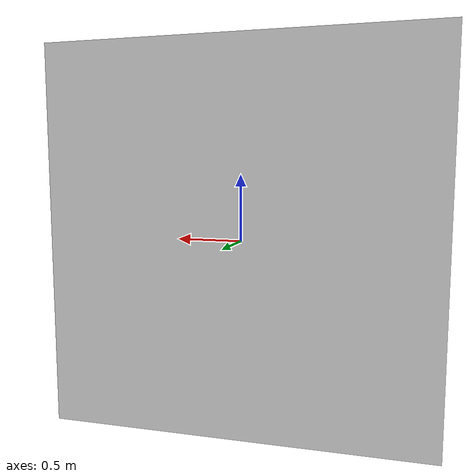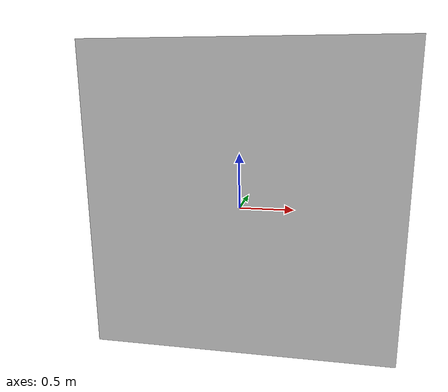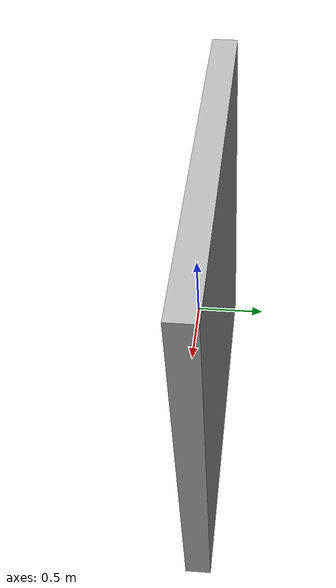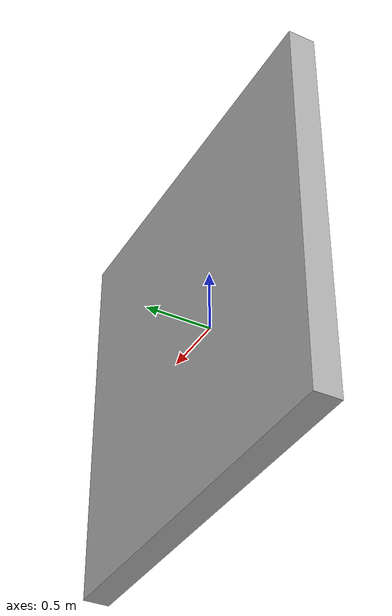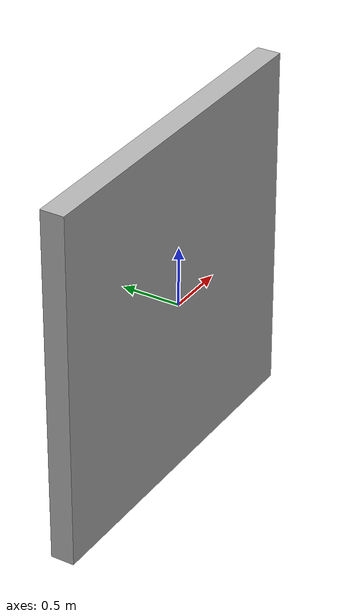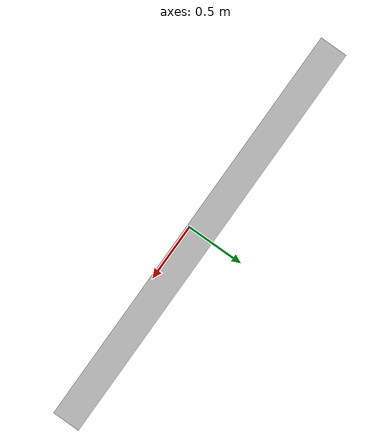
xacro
<?xml version="1.0" ?>
<robot name="urdf_angkor_center" xmlns:xacro="http://www.ros.org/wiki/xacro">

<xacro:include filename="$(find urdf_angkor_center_description)/urdf/materials.xacro" />
<xacro:include filename="$(find urdf_angkor_center_description)/urdf/urdf_angkor_center.trans" />
<xacro:include filename="$(find urdf_angkor_center_description)/urdf/urdf_angkor_center.gazebo" />
<link name="base_link">
  <inertial>
    <origin xyz="0.0 0.1 0.0" rpy="0 0 0"/>
    <mass value="14129.999999999998"/>
    <inertia ixx="10644.6" iyy="21195.0" izz="10644.6" ixy="0.0" iyz="0.0" ixz="0.0"/>
  </inertial>
  <visual>
    <origin xyz="0 0 0" rpy="0 0 0"/>
    <geometry>
      <mesh filename="package://urdf_angkor_center_description/meshes/base_link.stl" scale="0.001 0.001 0.001"/>
    </geometry>
    <material name="silver"/>
  </visual>
  <collision>
    <origin xyz="0 0 0" rpy="0 0 0"/>
    <geometry>
      <mesh filename="package://urdf_angkor_center_description/meshes/base_link.stl" scale="0.001 0.001 0.001"/>
    </geometry>
  </collision>
</link>

</robot>

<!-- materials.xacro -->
<robot name="urdf_angkor_center" xmlns:xacro="http://www.ros.org/wiki/xacro" >

<material name="silver">
  <color rgba="0.700 0.700 0.700 1.000"/>
</material>

</robot>

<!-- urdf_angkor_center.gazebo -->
<robot name="urdf_angkor_center" xmlns:xacro="http://www.ros.org/wiki/xacro" >

<xacro:property name="body_color" value="Gazebo/Silver" />

<gazebo>
  <plugin name="control" filename="libgazebo_ros_control.so"/>
</gazebo>
<gazebo reference="base_link">
  <material>${body_color}</material>
  <mu1>0.2</mu1>
  <mu2>0.2</mu2>
  <selfCollide>true</selfCollide>
  <gravity>true</gravity>
</gazebo>

</robot>
